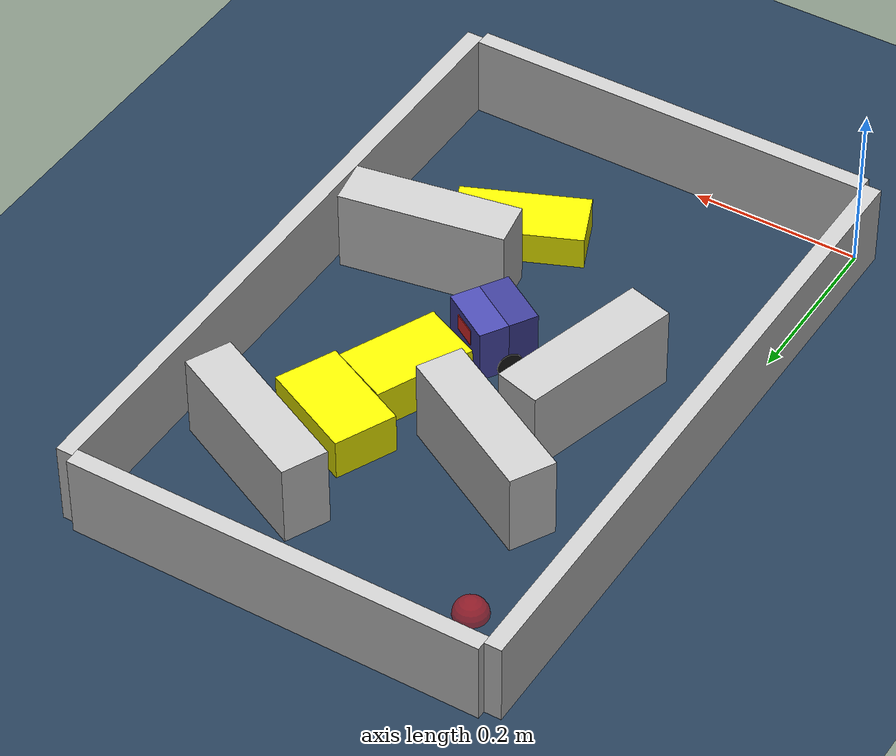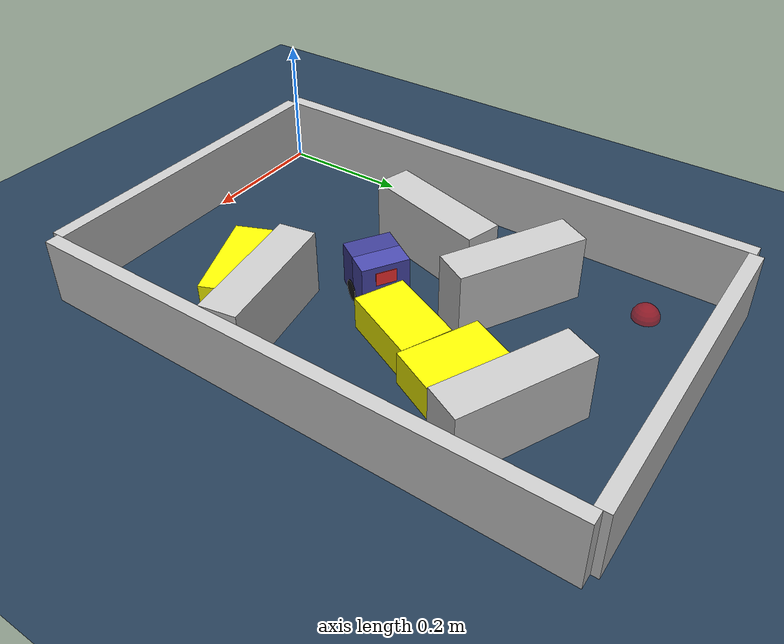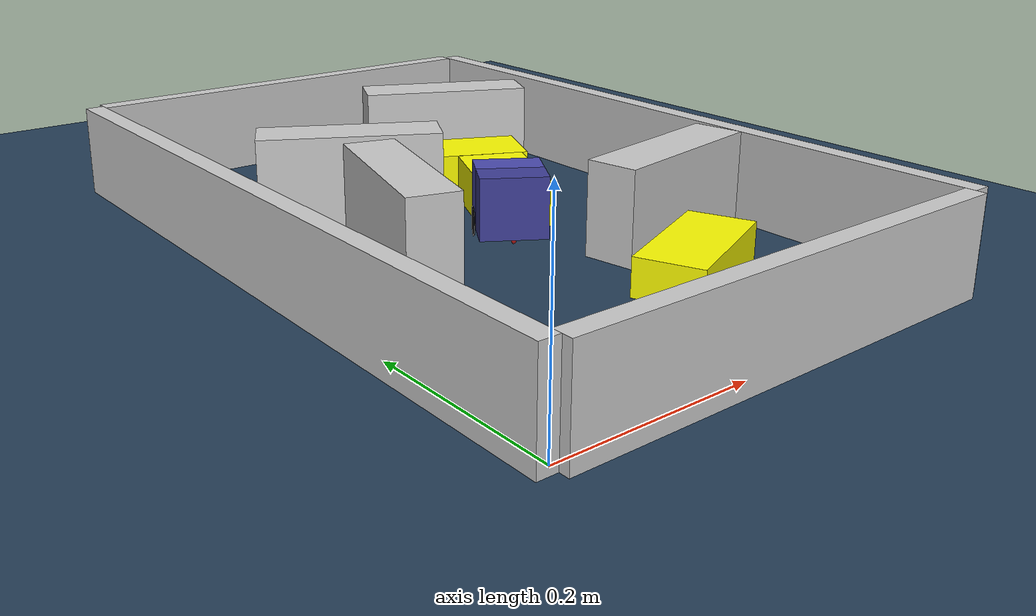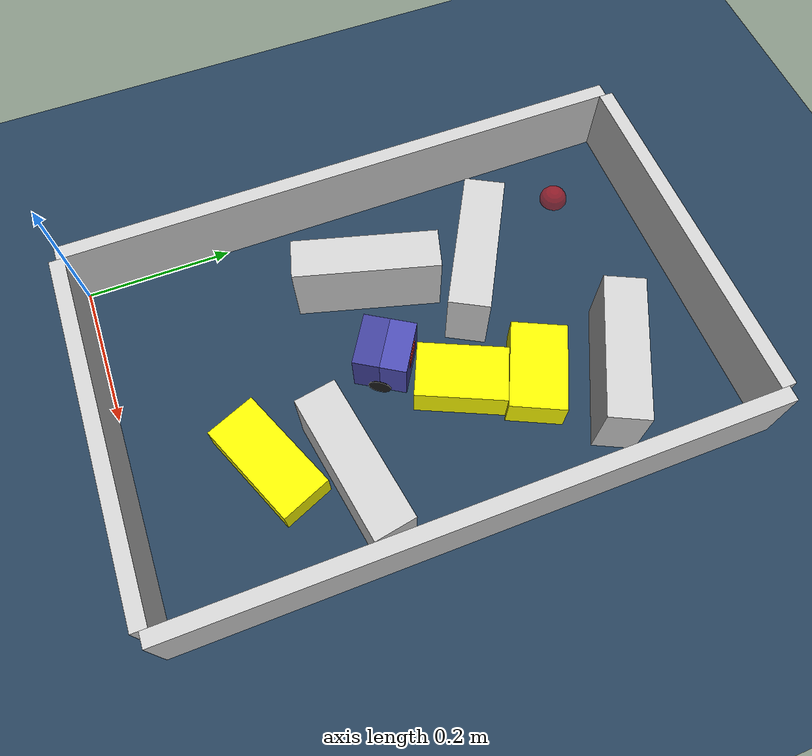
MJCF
<?xml version='1.0' encoding='utf-8'?>
<mujoco model="real_buildable">
  <compiler angle="degree" />
  <option timestep="0.002" integrator="implicitfast" iterations="100" cone="elliptic" />
  <default>
    <geom density="1" />
  </default>
  <asset>
    <texture builtin="gradient" height="3072" rgb1="0.3 0.5 0.7" rgb2="0 0 0" type="skybox" width="512" />
    <texture builtin="checker" height="300" mark="edge" markrgb="0.8 0.8 0.8" name="groundplane" rgb1="0.2 0.3 0.4" rgb2="0.1 0.2 0.3" type="2d" width="300" />
    <material name="groundplane" reflectance="0.2" texrepeat="5 5" texture="groundplane" texuniform="true" />
  </asset>
  <worldbody>
    <light dir="0 0 -1" directional="true" pos="0 0 1.5" />
    <geom name="floor" type="plane" condim="4" friction="0.5 0.005 0.001" material="groundplane" size="0 0 0.05" />
    <body name="walls">
      <geom name="wall_boundary_left" type="box" condim="4" friction="1.0 0.005 0.0001" rgba="0.8 0.8 0.8 1" pos="-0.010000 0.387500 0.050000" euler="0 0 0.000000" size="0.010000 0.397500 0.050000" />
      <geom name="wall_boundary_right" type="box" condim="4" friction="1.0 0.005 0.0001" rgba="0.8 0.8 0.8 1" pos="0.500000 0.387500 0.050000" euler="0 0 0.000000" size="0.010000 0.397500 0.050000" />
      <geom name="wall_boundary_bottom" type="box" condim="4" friction="1.0 0.005 0.0001" rgba="0.8 0.8 0.8 1" pos="0.245000 -0.010000 0.050000" euler="0 0 0.000000" size="0.245000 0.010000 0.050000" />
      <geom name="wall_boundary_top" type="box" condim="4" friction="1.0 0.005 0.0001" rgba="0.8 0.8 0.8 1" pos="0.245000 0.785000 0.050000" euler="0 0 0.000000" size="0.245000 0.010000 0.050000" />
      <geom name="wall_inner_1" type="box" condim="4" friction="1.0 0.005 0.0001" rgba="0.8 0.8 0.8 1" pos="0.389214 0.264573 0.050000" euler="0 0 9.954213" size="0.097500 0.027500 0.050000" />
      <geom name="wall_inner_2" type="box" condim="4" friction="1.0 0.005 0.0001" rgba="0.8 0.8 0.8 1" pos="0.132042 0.369672 0.050000" euler="0 0 74.577875" size="0.097500 0.027500 0.050000" />
      <geom name="wall_inner_3" type="box" condim="4" friction="1.0 0.005 0.0001" rgba="0.8 0.8 0.8 1" pos="0.165000 0.514000 0.050000" euler="0 0 151.300000" size="0.097500 0.027500 0.050000" />
      <geom name="wall_inner_4" type="box" condim="4" friction="1.0 0.005 0.0001" rgba="0.8 0.8 0.8 1" pos="0.372000 0.628000 0.050000" euler="0 0 154.700000" size="0.097500 0.027500 0.050000" />
    </body>
    <body name="car" pos="0.25386259093365809 0.3515307390846758 0.01" quat="0.873427621076173 0 0 0.48695399242763904">
      <freejoint name="car_freejoint" />
      <inertial pos="0 0 0.0375" mass="0.35" diaginertia="0.000266 0.000266 0.000286" />
      <geom name="front_chassis_collision" type="box" pos="0.0175 0 0.0375" size="0.0175 0.035 0.0325" rgba="0.3 0.3 0.7 1" />
      <geom name="rear_chassis_collision" type="box" pos="-0.0175 0 0.0375" size="0.0175 0.035 0.0325" rgba="0.25 0.25 0.6 1" />
      <geom name="front_marker" type="box" pos="0.034 0 0.0505" size="0.002 0.015 0.01" rgba="1 0.2 0.2 1" contype="0" conaffinity="0" />
      <body name="rear_support_body" pos="-0.03 0 0.0025">
        <joint name="rear_caster_joint" type="ball" damping="0.0001" />
        <inertial pos="0 0 0" mass="0.025" diaginertia="0.000001 0.000001 0.000001" />
        <geom name="rear_support" type="sphere" pos="0 0 0" size="0.0025" friction="0 0 0" rgba="0.7 0.1 0.1 1" />
      </body>
      <body name="front_support_body" pos="0.03 0 0.0025">
        <joint name="front_caster_joint" type="ball" damping="0.0001" />
        <inertial pos="0 0 0" mass="0.025" diaginertia="0.000001 0.000001 0.000001" />
        <geom name="front_support" type="sphere" pos="0 0 0" size="0.0025" friction="0 0 0" rgba="0.1 0.7 0.1 1" />
      </body>
      <body name="left_wheel" pos="0 0.0375 0.015">
        <inertial pos="0 0 0" mass="0.05" diaginertia="0.000003 0.000006 0.000003" />
        <joint name="left_wheel_joint" type="hinge" axis="0 1 0" damping="0.01" armature="0.0001" />
        <geom name="left_wheel_collision" type="cylinder" size="0.015 0.0005" euler="90 0 0" rgba="0.1 0.1 0.1 1" />
      </body>
      <body name="right_wheel" pos="0 -0.0375 0.015">
        <inertial pos="0 0 0" mass="0.05" diaginertia="0.000003 0.000006 0.000003" />
        <joint name="right_wheel_joint" type="hinge" axis="0 1 0" damping="0.01" armature="0.0001" />
        <geom name="right_wheel_collision" type="cylinder" size="0.015 0.0005" euler="90 0 0" rgba="0.1 0.1 0.1 1" />
      </body>
    </body>
    <body name="obstacle_0_movable">
      <geom name="obstacle_0_movable" condim="4" pos="0.31247824377482736 0.434951226868725 0.025000000000000001" friction="1 0.005 0.0001" rgba="1 1 0 1" size="0.037500 0.060000 0.025000" type="box" mass="0.1" quat="0.21035018122482085 0 0 0.97762610504153635" />
      <joint type="free" />
    </body>
    <body name="obstacle_1_movable">
      <geom name="obstacle_1_movable" condim="4" pos="0.33943381602694739 0.53051582895208271 0.025000000000000001" friction="1 0.005 0.0001" rgba="1 1 0 1" size="0.037500 0.060000 0.025000" type="box" mass="0.1" quat="0.84350168059266006 0 0 0.53712653521992204" />
      <joint type="free" />
    </body>
    <body name="obstacle_2_movable">
      <geom name="obstacle_2_movable" condim="4" pos="0.33028000000000018 0.16864399999999993 0.02" friction="1 0.005 0.0001" rgba="1 1 0 1" size="0.035000 0.075000 0.020000" type="box" mass="0.1" quat="0.55294471187460548 0 0 0.83321794604407651" />
      <joint type="free" />
    </body>
    <site name="goal" type="sphere" pos="0.080000 0.680000 0.0" size="0.02" rgba="1 0 0 0.5" />
  </worldbody>
  <actuator>
    <velocity name="left_wheel_drive" joint="left_wheel_joint" ctrlrange="-25 25" kv="0.75" forcerange="-0.5 0.5" />
    <velocity name="right_wheel_drive" joint="right_wheel_joint" ctrlrange="-25 25" kv="0.75" forcerange="-0.5 0.5" />
  </actuator>
</mujoco>
